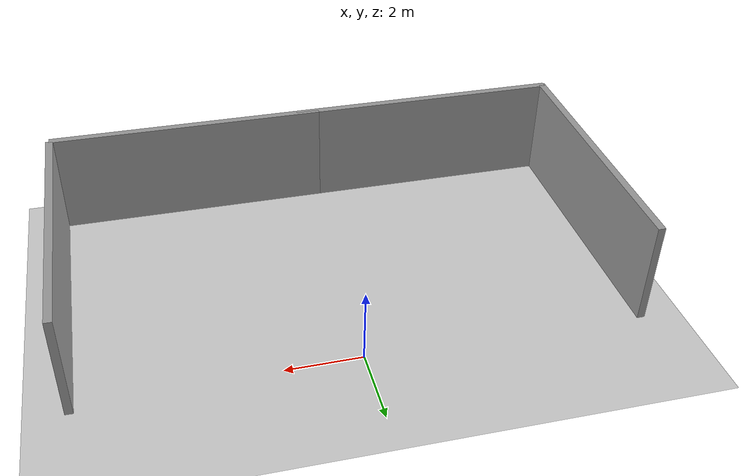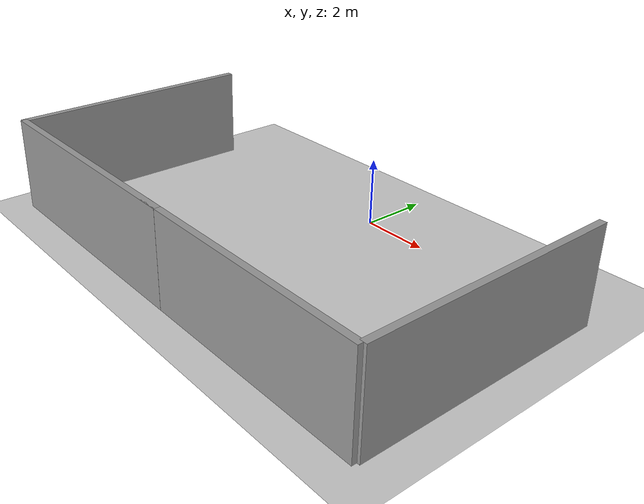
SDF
<sdf version="1.4">
 <world name="GrannyAnnie">
  <model name="ground_plane">
   <static>1</static>
   <link name="link">
    <collision name="collision">
     <geometry><plane><normal>0 0 1</normal><size>100 100</size></plane></geometry>
     <surface><friction><ode><mu>100</mu><mu2>50</mu2></ode></friction></surface>
    </collision>
    <visual name="visual">
     <cast_shadows>0</cast_shadows>
     <geometry><plane><normal>0 0 1</normal><size>100 100</size></plane></geometry>
     <material>
      <script><uri>file://media/materials/scripts/gazebo.material</uri><name>Gazebo/Grey</name></script>
     </material>
    </visual>
    <velocity_decay><linear>0</linear><angular>0</angular></velocity_decay>
   </link>
  </model>
  <model name="grey_wall_0">
   <static>1</static>
   <link name="link">
    <pose>0 0 1.4 0 -0 0</pose>
    <collision name="collision"><geometry><box><size>7.5 0.2 2.8</size></box></geometry></collision>
    <visual name="visual">
     <cast_shadows>0</cast_shadows>
     <geometry><box><size>7.5 0.2 2.8</size></box></geometry>
     <material>
      <script>
       <uri>model://grey_wall/materials/scripts</uri>
       <uri>model://grey_wall/materials/textures</uri>
       <name>vrc/grey_wall</name>
      </script>
     </material>
    </visual>
    <velocity_decay><linear>0</linear><angular>0</angular></velocity_decay>
   </link>
   <pose>-7.25571 -3.5819 0 0 0 -1.57522</pose>
  </model>
  <model name="grey_wall_2">
   <static>1</static>
   <link name="link">
    <pose>0 0 1.4 0 -0 0</pose>
    <collision name="collision"><geometry><box><size>7.5 0.2 2.8</size></box></geometry></collision>
    <visual name="visual">
     <cast_shadows>0</cast_shadows>
     <geometry><box><size>7.5 0.2 2.8</size></box></geometry>
     <material>
      <script>
       <uri>model://grey_wall/materials/scripts</uri>
       <uri>model://grey_wall/materials/textures</uri>
       <name>vrc/grey_wall</name>
      </script>
     </material>
    </visual>
    <velocity_decay><linear>0</linear><angular>0</angular></velocity_decay>
   </link>
   <pose>-3.57864 -7.27256 0 0 -0 0</pose>
  </model>
  <model name="grey_wall_4">
   <static>1</static>
   <link name="link">
    <pose>0 0 1.4 0 -0 0</pose>
    <collision name="collision"><geometry><box><size>7.5 0.2 2.8</size></box></geometry></collision>
    <visual name="visual">
     <cast_shadows>0</cast_shadows>
     <geometry><box><size>7.5 0.2 2.8</size></box></geometry>
     <material>
      <script>
       <uri>model://grey_wall/materials/scripts</uri>
       <uri>model://grey_wall/materials/textures</uri>
       <name>vrc/grey_wall</name>
      </script>
     </material>
    </visual>
    <velocity_decay><linear>0</linear><angular>0</angular></velocity_decay>
   </link>
   <pose>7.03023 -3.4783 0 0 0 -1.5708</pose>
  </model>
  <model name="grey_wall_5">
   <static>1</static>
   <link name="link">
    <pose>0 0 1.4 0 -0 0</pose>
    <collision name="collision"><geometry><box><size>7.5 0.2 2.8</size></box></geometry></collision>
    <visual name="visual">
     <cast_shadows>0</cast_shadows>
     <geometry><box><size>7.5 0.2 2.8</size></box></geometry>
     <material>
      <script>
       <uri>model://grey_wall/materials/scripts</uri>
       <uri>model://grey_wall/materials/textures</uri>
       <name>vrc/grey_wall</name>
      </script>
     </material>
    </visual>
    <velocity_decay><linear>0</linear><angular>0</angular></velocity_decay>
   </link>
   <pose>3.29916 -7.27083 0 0 -0 0</pose>
  </model>
 </world>
</sdf>
